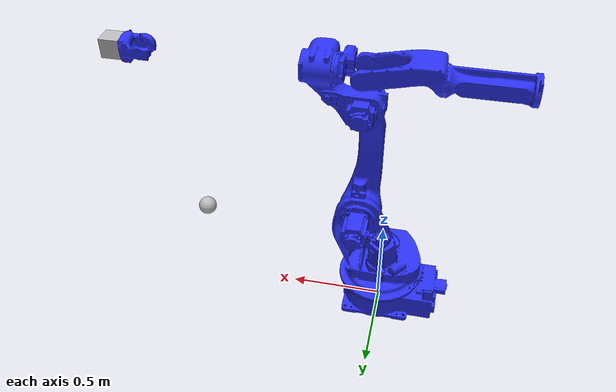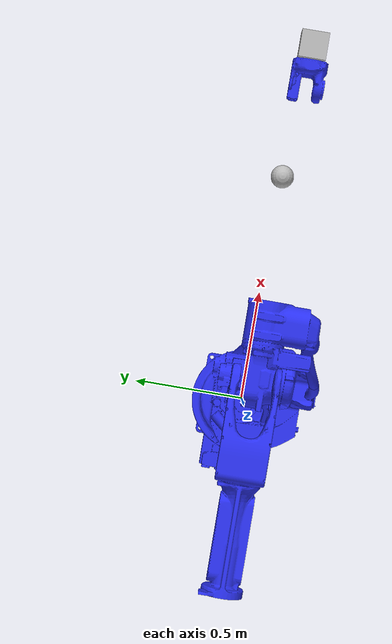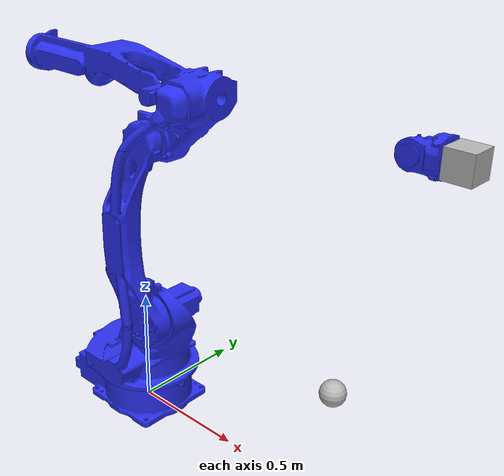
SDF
<?xml version="1.0" ?>
<sdf version='1.11'>
  <world name="default">
      <physics name="1ms" type="ignored">
        <max_step_size>0.001</max_step_size>
        <real_time_factor>1.0</real_time_factor>
      </physics>
      <plugin
        filename="gz-sim-physics-system"
        name="gz::sim::systems::Physics">
      </plugin>
      <plugin
        filename="gz-sim-sensors-system"
        name="gz::sim::systems::Sensors">
        <render_engine>ogre2</render_engine>
      </plugin>
      <plugin
        filename="gz-sim-scene-broadcaster-system"
        name="gz::sim::systems::SceneBroadcaster">
      </plugin>
      <plugin
        filename="gz-sim-user-commands-system"
        name="gz::sim::systems::UserCommands">
      </plugin>
      <model name='gz_ma2010'>
        <link name='base_link'>
          <inertial>
            <pose>0 0 0 0 0 0</pose>
            <mass>0.1</mass>
            <inertia>
              <ixx>0.2</ixx>
              <ixy>0</ixy>
              <ixz>0</ixz>
              <iyy>0.2</iyy>
              <iyz>0</iyz>
              <izz>0.1</izz>
            </inertia>
          </inertial>
          <collision name='base_link_collision'>
            <pose>0 0 0 0 0 0</pose>
            <geometry>
              <mesh>
                <scale>1 1 1</scale>
                <uri>model://motoman_ma2010_support/meshes/ma2010/collision/base_link.stl</uri>
              </mesh>
            </geometry>
          </collision>
          <collision name='base_link_fixed_joint_lump__sphere_collision_1'>
            <pose>1 0 0.5 0 0 0</pose>
            <geometry>
              <sphere>
                <radius>0.050000000000000003</radius>
              </sphere>
            </geometry>
          </collision>
          <visual name='base_link_visual'>
            <pose>0 0 0 0 0 0</pose>
            <geometry>
              <mesh>
                <scale>1 1 1</scale>
                <uri>model://motoman_ma2010_support/meshes/ma2010/visual/base_link.stl</uri>
              </mesh>
            </geometry>
            <material>
              <diffuse>0.161764711 0.186274514 0.936274529 1</diffuse>
              <ambient>0.161764711 0.186274514 0.936274529 1</ambient>
            </material>
          </visual>
          <visual name='base_link_fixed_joint_lump__sphere_visual_1'>
            <pose>1 0 0.5 0 0 0</pose>
            <geometry>
              <sphere>
                <radius>0.050000000000000003</radius>
              </sphere>
            </geometry>
          </visual>
        </link>
        <joint name='joint_1_s' type='revolute'>
          <pose relative_to='base_link'>0 0 0.505 0 0 0</pose>
          <parent>base_link</parent>
          <child>link_1_s</child>
          <axis>
            <xyz>0 0 1</xyz>
            <limit>
              <lower>-3.1415999999999999</lower>
              <upper>3.1415999999999999</upper>
              <effort>3087</effort>
              <velocity>3.4382999999999999</velocity>
            </limit>
            <dynamics>
              <spring_reference>0</spring_reference>
              <spring_stiffness>0</spring_stiffness>
              <damping>0.5</damping>
            </dynamics>
          </axis>
        </joint>
        <link name='link_1_s'>
          <pose relative_to='joint_1_s'>0 0 0 0 0 0</pose>
          <inertial>
            <pose>0 0 0 0 0 0</pose>
            <mass>0.1</mass>
            <inertia>
              <ixx>0.2</ixx>
              <ixy>0</ixy>
              <ixz>0</ixz>
              <iyy>0.2</iyy>
              <iyz>0</iyz>
              <izz>0.1</izz>
            </inertia>
          </inertial>
          <collision name='link_1_s_collision'>
            <pose>0 0 0 0 0 0</pose>
            <geometry>
              <mesh>
                <scale>1 1 1</scale>
                <uri>model://motoman_ma2010_support/meshes/ma2010/collision/link_1_s.stl</uri>
              </mesh>
            </geometry>
          </collision>
          <visual name='link_1_s_visual'>
            <pose>0 0 0 0 0 0</pose>
            <geometry>
              <mesh>
                <scale>1 1 1</scale>
                <uri>model://motoman_ma2010_support/meshes/ma2010/visual/link_1_s.stl</uri>
              </mesh>
            </geometry>
            <material>
              <diffuse>0.161764711 0.186274514 0.936274529 1</diffuse>
              <ambient>0.161764711 0.186274514 0.936274529 1</ambient>
            </material>
          </visual>
        </link>
        <joint name='joint_2_l' type='revolute'>
          <pose relative_to='link_1_s'>0.14999999999999999 0 0 0 0 0</pose>
          <parent>link_1_s</parent>
          <child>link_2_l</child>
          <axis>
            <xyz>0 1 0</xyz>
            <limit>
              <lower>-1.8326</lower>
              <upper>2.7052</upper>
              <effort>2744</effort>
              <velocity>3.3161</velocity>
            </limit>
            <dynamics>
              <spring_reference>0</spring_reference>
              <spring_stiffness>0</spring_stiffness>
              <damping>0.5</damping>
            </dynamics>
          </axis>
        </joint>
        <link name='link_2_l'>
          <pose relative_to='joint_2_l'>0 0 0 0 0 0</pose>
          <inertial>
            <pose>0 0 0 0 0 0</pose>
            <mass>0.1</mass>
            <inertia>
              <ixx>0.2</ixx>
              <ixy>0</ixy>
              <ixz>0</ixz>
              <iyy>0.2</iyy>
              <iyz>0</iyz>
              <izz>0.1</izz>
            </inertia>
          </inertial>
          <collision name='link_2_l_collision'>
            <pose>0 0 0 0 0 0</pose>
            <geometry>
              <mesh>
                <scale>1 1 1</scale>
                <uri>model://motoman_ma2010_support/meshes/ma2010/collision/link_2_l.stl</uri>
              </mesh>
            </geometry>
          </collision>
          <visual name='link_2_l_visual'>
            <pose>0 0 0 0 0 0</pose>
            <geometry>
              <mesh>
                <scale>1 1 1</scale>
                <uri>model://motoman_ma2010_support/meshes/ma2010/visual/link_2_l.stl</uri>
              </mesh>
            </geometry>
            <material>
              <diffuse>0.161764711 0.186274514 0.936274529 1</diffuse>
              <ambient>0.161764711 0.186274514 0.936274529 1</ambient>
            </material>
          </visual>
        </link>
        <joint name='joint_3_u' type='revolute'>
          <pose relative_to='link_2_l'>0 0 0.76000000000000001 0 0 0</pose>
          <parent>link_2_l</parent>
          <child>link_3_u</child>
          <axis>
            <xyz>0 -1 0</xyz>
            <limit>
              <lower>-1.5008999999999999</lower>
              <upper>2.7925</upper>
              <effort>874.64999999999998</effort>
              <velocity>3.6652</velocity>
            </limit>
            <dynamics>
              <spring_reference>0</spring_reference>
              <spring_stiffness>0</spring_stiffness>
              <damping>0.5</damping>
            </dynamics>
          </axis>
        </joint>
        <link name='link_3_u'>
          <pose relative_to='joint_3_u'>0 0 0 0 0 0</pose>
          <inertial>
            <pose>0 0 0 0 0 0</pose>
            <mass>0.1</mass>
            <inertia>
              <ixx>0.2</ixx>
              <ixy>0</ixy>
              <ixz>0</ixz>
              <iyy>0.2</iyy>
              <iyz>0</iyz>
              <izz>0.1</izz>
            </inertia>
          </inertial>
          <collision name='link_3_u_collision'>
            <pose>0 0 0 0 0 0</pose>
            <geometry>
              <mesh>
                <scale>1 1 1</scale>
                <uri>model://motoman_ma2010_support/meshes/ma2010/collision/link_3_u.stl</uri>
              </mesh>
            </geometry>
          </collision>
          <visual name='link_3_u_visual'>
            <pose>0 0 0 0 0 0</pose>
            <geometry>
              <mesh>
                <scale>1 1 1</scale>
                <uri>model://motoman_ma2010_support/meshes/ma2010/visual/link_3_u.stl</uri>
              </mesh>
            </geometry>
            <material>
              <diffuse>0.161764711 0.186274514 0.936274529 1</diffuse>
              <ambient>0.161764711 0.186274514 0.936274529 1</ambient>
            </material>
          </visual>
        </link>
        <joint name='joint_4_r' type='revolute'>
          <pose relative_to='link_3_u'>0 0 0.20000000000000001 0 0 0</pose>
          <parent>link_3_u</parent>
          <child>link_4_r</child>
          <axis>
            <xyz>-1 0 0</xyz>
            <limit>
              <lower>-2.6179999999999999</lower>
              <upper>2.6179999999999999</upper>
              <effort>78.400000000000006</effort>
              <velocity>7.1558000000000002</velocity>
            </limit>
            <dynamics>
              <spring_reference>0</spring_reference>
              <spring_stiffness>0</spring_stiffness>
              <damping>0.5</damping>
            </dynamics>
          </axis>
        </joint>
        <link name='link_4_r'>
          <pose relative_to='joint_4_r'>0 0 0 0 0 0</pose>
          <inertial>
            <pose>0 0 0 0 0 0</pose>
            <mass>0.1</mass>
            <inertia>
              <ixx>0.2</ixx>
              <ixy>0</ixy>
              <ixz>0</ixz>
              <iyy>0.2</iyy>
              <iyz>0</iyz>
              <izz>0.1</izz>
            </inertia>
          </inertial>
          <collision name='link_4_r_collision'>
            <pose>0 0 0 0 0 0</pose>
            <geometry>
              <mesh>
                <scale>1 1 1</scale>
                <uri>model://motoman_ma2010_support/meshes/ma2010/collision/link_4_r.stl</uri>
              </mesh>
            </geometry>
          </collision>
          <visual name='link_4_r_visual'>
            <pose>0 0 0 0 0 0</pose>
            <geometry>
              <mesh>
                <scale>1 1 1</scale>
                <uri>model://motoman_ma2010_support/meshes/ma2010/visual/link_4_r.stl</uri>
              </mesh>
            </geometry>
            <material>
              <diffuse>0.161764711 0.186274514 0.936274529 1</diffuse>
              <ambient>0.161764711 0.186274514 0.936274529 1</ambient>
            </material>
          </visual>
        </link>
        <joint name='joint_5_b' type='revolute'>
          <pose relative_to='link_4_r'>1.0820000000000001 0 0 0 0 0</pose>
          <parent>link_4_r</parent>
          <child>link_5_b</child>
          <axis>
            <xyz>0 -1 0</xyz>
            <limit>
              <lower>-2.3561999999999999</lower>
              <upper>1.5708</upper>
              <effort>59.579999999999998</effort>
              <velocity>7.1558000000000002</velocity>
            </limit>
            <dynamics>
              <spring_reference>0</spring_reference>
              <spring_stiffness>0</spring_stiffness>
              <damping>0.5</damping>
            </dynamics>
          </axis>
        </joint>
        <link name='link_5_b'>
          <pose relative_to='joint_5_b'>0 0 0 0 0 0</pose>
          <inertial>
            <pose>0 0 0 0 0 0</pose>
            <mass>0.1</mass>
            <inertia>
              <ixx>0.2</ixx>
              <ixy>0</ixy>
              <ixz>0</ixz>
              <iyy>0.2</iyy>
              <iyz>0</iyz>
              <izz>0.1</izz>
            </inertia>
          </inertial>
          <collision name='link_5_b_collision'>
            <pose>0 0 0 0 0 0</pose>
            <geometry>
              <mesh>
                <scale>1 1 1</scale>
                <uri>model://motoman_ma2010_support/meshes/ma2010/collision/link_5_b.stl</uri>
              </mesh>
            </geometry>
          </collision>
          <visual name='link_5_b_visual'>
            <pose>0 0 0 0 0 0</pose>
            <geometry>
              <mesh>
                <scale>1 1 1</scale>
                <uri>model://motoman_ma2010_support/meshes/ma2010/visual/link_5_b.stl</uri>
              </mesh>
            </geometry>
            <material>
              <diffuse>0.161764711 0.186274514 0.936274529 1</diffuse>
              <ambient>0.161764711 0.186274514 0.936274529 1</ambient>
            </material>
          </visual>
        </link>
        <joint name='joint_6_t' type='revolute'>
          <pose relative_to='link_5_b'>0 0 0 0 0 0</pose>
          <parent>link_5_b</parent>
          <child>link_6_t</child>
          <axis>
            <xyz>-1 0 0</xyz>
            <limit>
              <lower>-3.6652</lower>
              <upper>3.6652</upper>
              <effort>29.600000000000001</effort>
              <velocity>10.6465</velocity>
            </limit>
            <dynamics>
              <spring_reference>0</spring_reference>
              <spring_stiffness>0</spring_stiffness>
              <damping>0.5</damping>
            </dynamics>
          </axis>
        </joint>
        <link name='link_6_t'>
          <pose relative_to='joint_6_t'>0 0 0 0 0 0</pose>
          <inertial>
            <pose>0 0 0 0 0 0</pose>
            <mass>0.1</mass>
            <inertia>
              <ixx>0.2</ixx>
              <ixy>0</ixy>
              <ixz>0</ixz>
              <iyy>0.2</iyy>
              <iyz>0</iyz>
              <izz>0.1</izz>
            </inertia>
          </inertial>
          <collision name='link_6_t_collision'>
            <pose>0 0 0 0 0 0</pose>
            <geometry>
              <mesh>
                <scale>1 1 1</scale>
                <uri>model://motoman_ma2010_support/meshes/ma2010/collision/link_6_t.stl</uri>
              </mesh>
            </geometry>
          </collision>
          <visual name='link_6_t_visual'>
            <pose>0 0 0 0 0 0</pose>
            <geometry>
              <mesh>
                <scale>1 1 1</scale>
                <uri>model://motoman_ma2010_support/meshes/ma2010/visual/link_6_t.stl</uri>
              </mesh>
            </geometry>
            <material>
              <diffuse>0.161764711 0.186274514 0.936274529 1</diffuse>
              <ambient>0.161764711 0.186274514 0.936274529 1</ambient>
            </material>
          </visual>
        </link>
        <frame name='base_link-base' attached_to='base_link'>
          <pose>0 0 0.505 0 0 0</pose>
        </frame>
        <frame name='base' attached_to='base_link-base'>
          <pose>0 0 0 0 0 0</pose>
        </frame>
        <frame name='base_link-sphere' attached_to='base_link'>
          <pose>1 0 0.5 0 0 0</pose>
        </frame>
        <frame name='sphere' attached_to='base_link-sphere'>
          <pose>0 0 0 0 0 0</pose>
        </frame>
        <frame name='joint_6_t-tool0' attached_to='link_6_t'>
          <pose>0.10000000000000001 0 0 0 0 0</pose>
        </frame>
        <frame name='tool0' attached_to='joint_6_t-tool0'>
          <pose>0 0 0 0 0 0</pose>
        </frame>
        <joint name="base_link_world" type="fixed">
          <parent>world</parent>
          <child>base_link</child>
        </joint>
        <link name="profilo">
            <pose relative_to='tool0'>0.05 0 0 0 0 0</pose>
            <inertial>
              <mass>0.1</mass>
              <inertia>
                <ixx>0.000166667</ixx>
                <iyy>0.000166667</iyy>
                <izz>0.000166667</izz>
              </inertia>
            </inertial>
            <collision name="collision">
              <geometry>
                <box>
                  <size>0.1 0.1 0.1</size>
                </box>
              </geometry>
            </collision>
            <visual name="visual">
              <geometry>
                <box>
                  <size>0.1 0.1 0.1</size>
                </box>
              </geometry>
            </visual>

            <sensor name='gpu_lidar' type='gpu_lidar'>
              <topic>profilo</topic>
              <update_rate>10</update_rate>
              <lidar>
                <scan>
                  <horizontal>
                    <samples>640</samples>
                    <resolution>1</resolution>
                    <min_angle>-3.14</min_angle>
                    <max_angle>3.14</max_angle>
                  </horizontal>
                  <vertical>
                    <samples>16</samples>
                    <resolution>1</resolution>
                    <min_angle>-0.1</min_angle>
                    <max_angle>0.1</max_angle>
                  </vertical>
                </scan>
                <range>
                  <min>0.01</min>
                  <max>2.0</max>
                  <resolution>0.001</resolution>
                </range>
              </lidar>
              <alwaysOn>1</alwaysOn>
              <visualize>true</visualize>
            </sensor>
        </link>
        <joint name="link_6_t-profilo" type="fixed">
          <child>profilo</child>
          <parent>link_6_t</parent>
        </joint>
        <plugin
         filename="gz-sim-joint-trajectory-controller-system"
         name="gz::sim::systems::JointTrajectoryController">
         <joint_name>joint_1_s</joint_name>
         <initial_position>0</initial_position>
         <position_p_gain>100.0</position_p_gain>
         <position_i_gain>0.5</position_i_gain>
         <position_d_gain>5.0</position_d_gain>
         <position_i_min>-10</position_i_min>
         <position_i_max>10</position_i_max>
         <position_cmd_min>-20</position_cmd_min>
         <position_cmd_max>20</position_cmd_max>

         <joint_name>joint_2_l</joint_name>
         <initial_position>0</initial_position>
         <position_p_gain>100.0</position_p_gain>
         <position_i_gain>0.5</position_i_gain>
         <position_d_gain>5.0</position_d_gain>
         <position_i_min>-10</position_i_min>
         <position_i_max>10</position_i_max>
         <position_cmd_min>-20</position_cmd_min>
         <position_cmd_max>20</position_cmd_max>

         <joint_name>joint_3_u</joint_name>
         <initial_position>0</initial_position>
         <position_p_gain>100.0</position_p_gain>
         <position_i_gain>0.5</position_i_gain>
         <position_d_gain>5.0</position_d_gain>
         <position_i_min>-10</position_i_min>
         <position_i_max>10</position_i_max>
         <position_cmd_min>-20</position_cmd_min>
         <position_cmd_max>20</position_cmd_max>

         <joint_name>joint_4_r</joint_name>
         <initial_position>0</initial_position>
         <position_p_gain>100.0</position_p_gain>
         <position_i_gain>0.5</position_i_gain>
         <position_d_gain>5.0</position_d_gain>
         <position_i_min>-10</position_i_min>
         <position_i_max>10</position_i_max>
         <position_cmd_min>-20</position_cmd_min>
         <position_cmd_max>20</position_cmd_max>

         <joint_name>joint_5_b</joint_name>
         <initial_position>0</initial_position>
         <position_p_gain>100.0</position_p_gain>
         <position_i_gain>0.5</position_i_gain>
         <position_d_gain>5.0</position_d_gain>
         <position_i_min>-10</position_i_min>
         <position_i_max>10</position_i_max>
         <position_cmd_min>-20</position_cmd_min>
         <position_cmd_max>20</position_cmd_max>

         <joint_name>joint_6_t</joint_name>
         <initial_position>0</initial_position>
         <position_p_gain>100.0</position_p_gain>
         <position_i_gain>0.5</position_i_gain>
         <position_d_gain>5.0</position_d_gain>
         <position_i_min>-10</position_i_min>
         <position_i_max>10</position_i_max>
         <position_cmd_min>-20</position_cmd_min>
         <position_cmd_max>20</position_cmd_max>
        </plugin>
        <plugin
            filename="ignition-gazebo-joint-state-publisher-system"
            name="ignition::gazebo::systems::JointStatePublisher">
        </plugin>

        <plugin
            filename="ignition-gazebo-pose-publisher-system"
            name="ignition::gazebo::systems::PosePublisher">
            <publish_link_pose>true</publish_link_pose>

            <use_pose_vector_msg>true</use_pose_vector_msg>
        </plugin>
      </model>
    </world>
</sdf>
